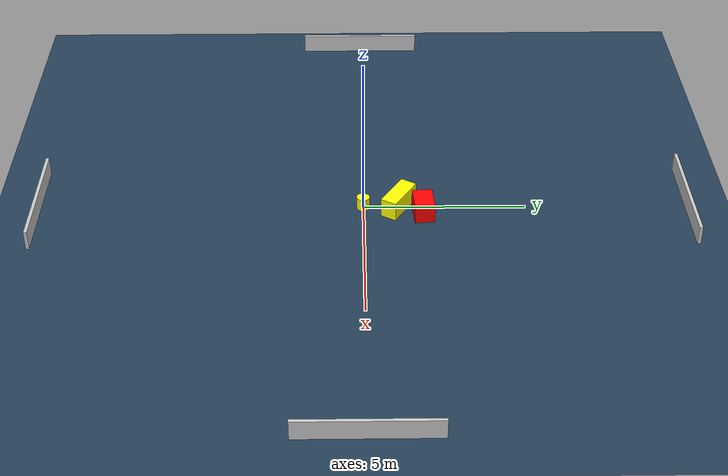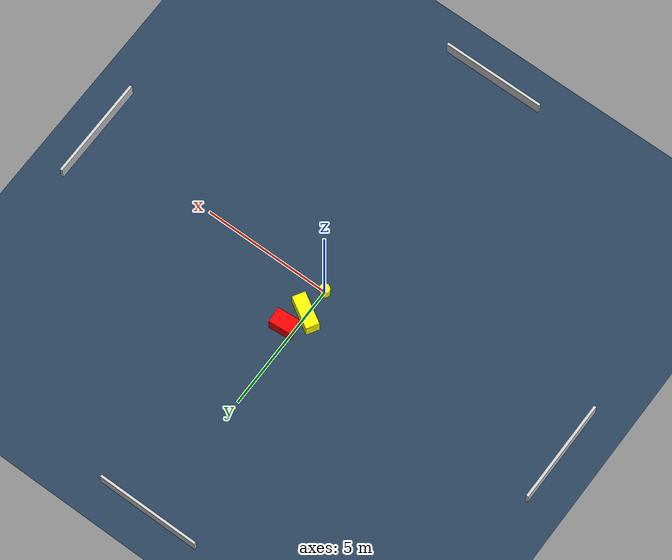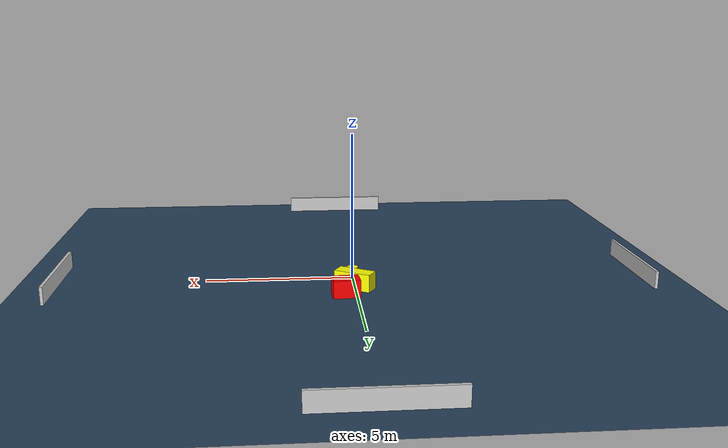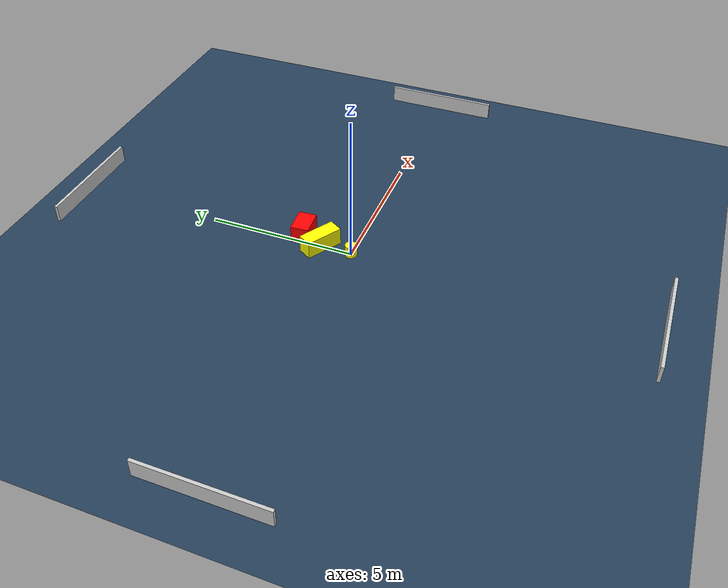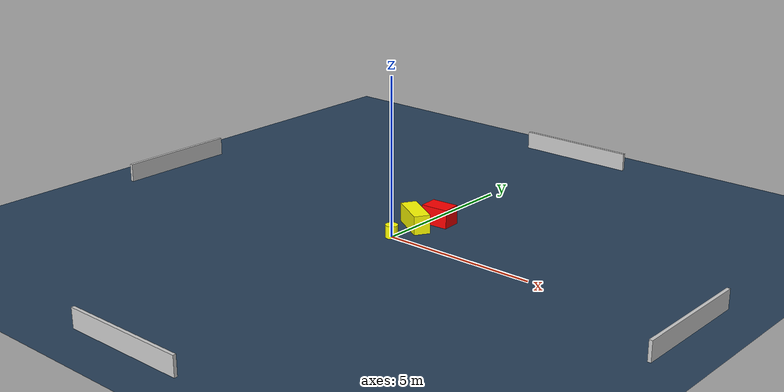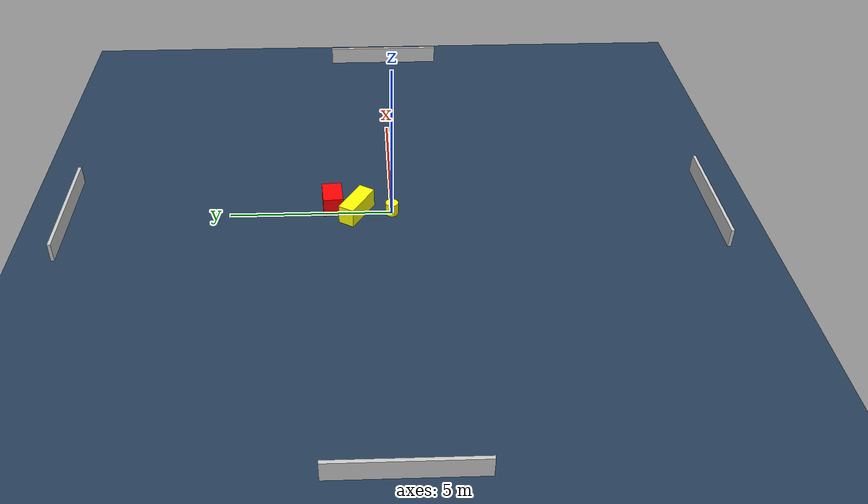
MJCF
<?xml version="1.0" ?>
<mujoco model="generated_environment">
  <option timestep="0.01" integrator="RK4" cone="elliptic"/>
  <default>
    <geom density="1"/>
  </default>
  <asset>
    <texture builtin="gradient" height="3072" name="skybox" rgb1="0.3 0.5 0.7" rgb2="0 0 0" type="skybox" width="512"/>
    <texture builtin="checker" height="300" name="groundplane" rgb1="0.2 0.3 0.4" rgb2="0.1 0.2 0.3" type="2d" width="300"/>
    <material name="groundplane" reflectance="0.2" texrepeat="5 5" texture="groundplane"/>
  </asset>
  <worldbody>
    <light dir="0 0 -1" directional="true" pos="0 0 1.5"/>
    <geom condim="3" friction="0.5 0.005 0.001" material="groundplane" name="floor" pos="0 0 0" size="0 0 0.05" type="plane"/>
    <body name="walls">
      <geom name="wall_1" condim="4" pos="-10.0 0.0 0.3" rgba="0.800000011920929 0.800000011920929 0.800000011920929 1.0" size="0.05 2.0 0.3" type="box"/>
      <geom name="wall_2" condim="4" pos="10.0 0.0 0.3" rgba="0.800000011920929 0.800000011920929 0.800000011920929 1.0" size="0.05 2.0 0.3" type="box"/>
      <geom name="wall_3" condim="4" pos="0.0 -10.0 0.3" rgba="0.800000011920929 0.800000011920929 0.800000011920929 1.0" size="2.0 0.05 0.3" type="box"/>
      <geom name="wall_4" condim="4" pos="0.0 10.0 0.3" rgba="0.800000011920929 0.800000011920929 0.800000011920929 1.0" size="2.0 0.05 0.3" type="box"/>
    </body>
    <body name="robot">
      <joint name="joint_x" type="slide" pos="0 0 0" axis="1 0 0"/>
      <joint name="joint_y" type="slide" pos="0 0 0" axis="0 1 0"/>
      <geom name="robot" type="cylinder" pos="0.0 0.0 0.2" size="0.2 0.2 0.0" mass="5.0" friction="1.0 0.005 0.0001" condim="4" rgba="1.0 1.0 0.0 1.0"/>
    </body>
    <body name="obstacle_1_movable">
      <geom name="obstacle_1_movable" condim="4" pos="0.010224574619613767 1.0900390585870874 0.3" euler="0 0 328.9693431962395" friction="0.0 0.005 0.001" rgba="1.0 1.0 0.0 1.0" size="0.6453270022712039 0.2557260686250848 0.3" type="box" mass="0.1"/>
      <joint type="free"/>
    </body>
    <body name="obstacle_2_static">
      <geom name="obstacle_2_static" condim="4" pos="0.3692429904670171 1.8417869415062902 0.3" euler="0 0 184.4159426393965" friction="0.0 0.005 0.001" rgba="1.0 0.0 0.0 1.0" size="0.4454237021932395 0.3072665599648429 0.3" type="box"/>
    </body>
  </worldbody>
  <actuator>
    <motor name="actuator_x" joint="joint_x" gear="1" ctrlrange="-1 1"/>
    <motor name="actuator_y" joint="joint_y" gear="1" ctrlrange="-1 1"/>
  </actuator>
</mujoco>
